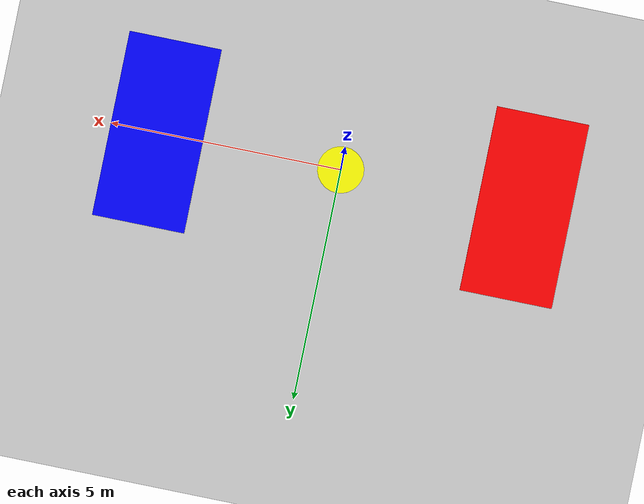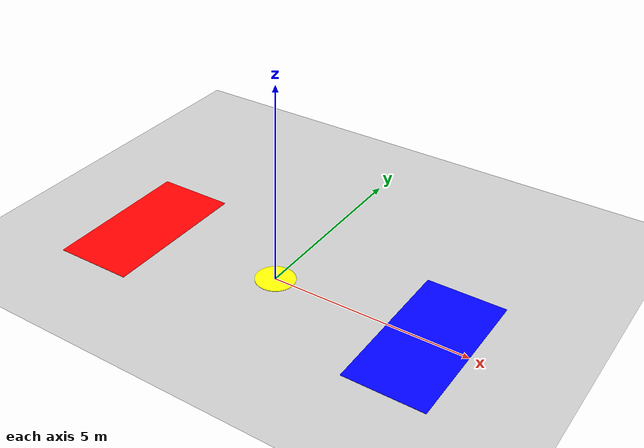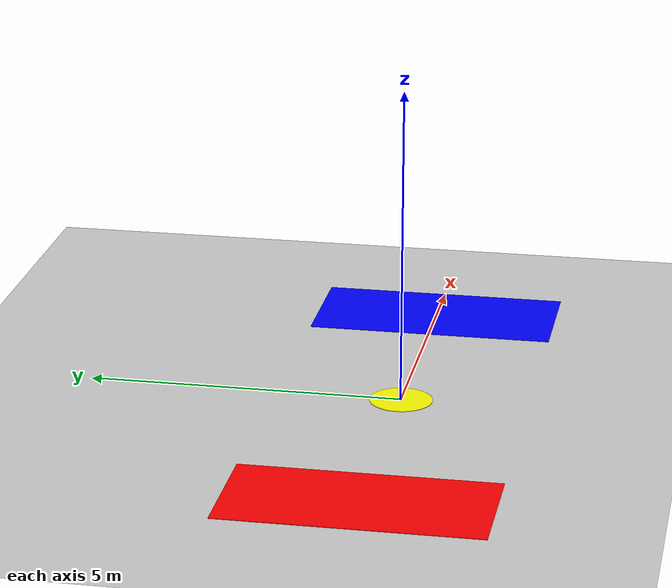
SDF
<?xml version="1.0" ?>
<sdf version="1.6">
  <world name="capture_the_flag_world">

    <!-- Luz solar -->
    <include>
      <uri>model://sun</uri>
    </include>

    <!-- Chão plano -->
    <include>
      <uri>model://ground_plane</uri>
    </include>

    <!-- Base vermelha -->
    <model name="red_base">
      <pose>-4 0 0 0 0 0</pose>
      <static>true</static>
      <link name="link">
        <collision name="collision">
          <geometry>
            <box>
              <size>2 4 0.01</size>
            </box>
          </geometry>
        </collision>
        <visual name="visual">
          <geometry>
            <box>
              <size>2 4 0.01</size>
            </box>
          </geometry>
          <material>
            <ambient>1 0 0 1</ambient>
            <diffuse>1 0 0 1</diffuse>
          </material>
        </visual>
      </link>
    </model>

    <!-- Base azul -->
    <model name="blue_base">
      <pose>4 0 0 0 0 0</pose>
      <static>true</static>
      <link name="link">
        <collision name="collision">
          <geometry>
            <box>
              <size>2 4 0.01</size>
            </box>
          </geometry>
        </collision>
        <visual name="visual">
          <geometry>
            <box>
              <size>2 4 0.01</size>
            </box>
          </geometry>
          <material>
            <ambient>0 0 1 1</ambient>
            <diffuse>0 0 1 1</diffuse>
          </material>
        </visual>
      </link>
    </model>

    <!-- Zona neutra no centro -->
    <model name="center_zone">
      <pose>0 0 0 0 0 0</pose>
      <static>true</static>
      <link name="link">
        <collision name="collision">
          <geometry>
            <cylinder>
              <radius>0.5</radius>
              <length>0.01</length>
            </cylinder>
          </geometry>
        </collision>
        <visual name="visual">
          <geometry>
            <cylinder>
              <radius>0.5</radius>
              <length>0.01</length>
            </cylinder>
          </geometry>
          <material>
            <ambient>1 1 0 1</ambient>
            <diffuse>1 1 0 1</diffuse>
          </material>
        </visual>
      </link>
    </model>

  </world>
</sdf>
